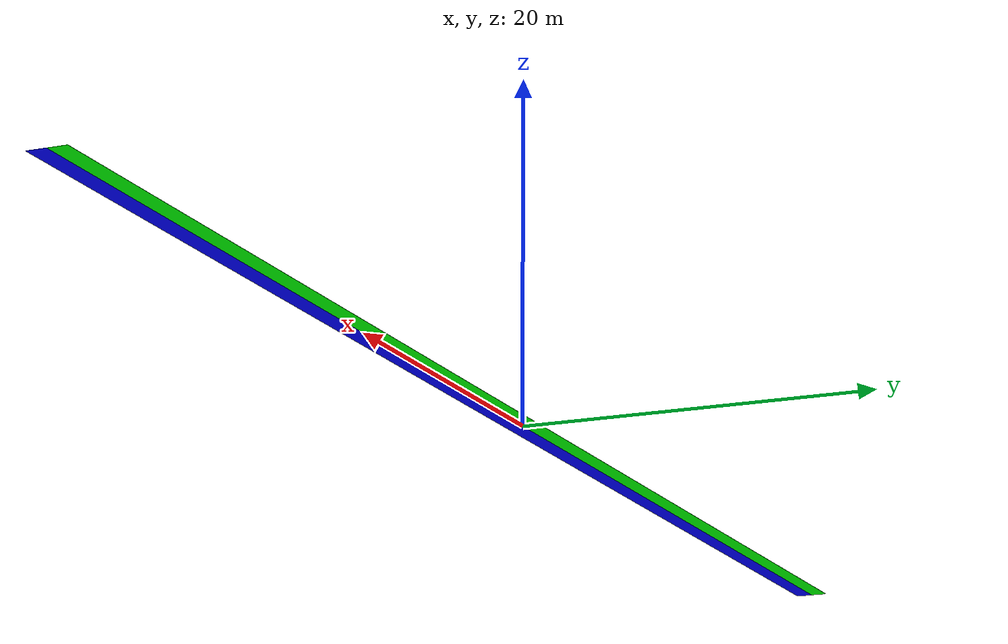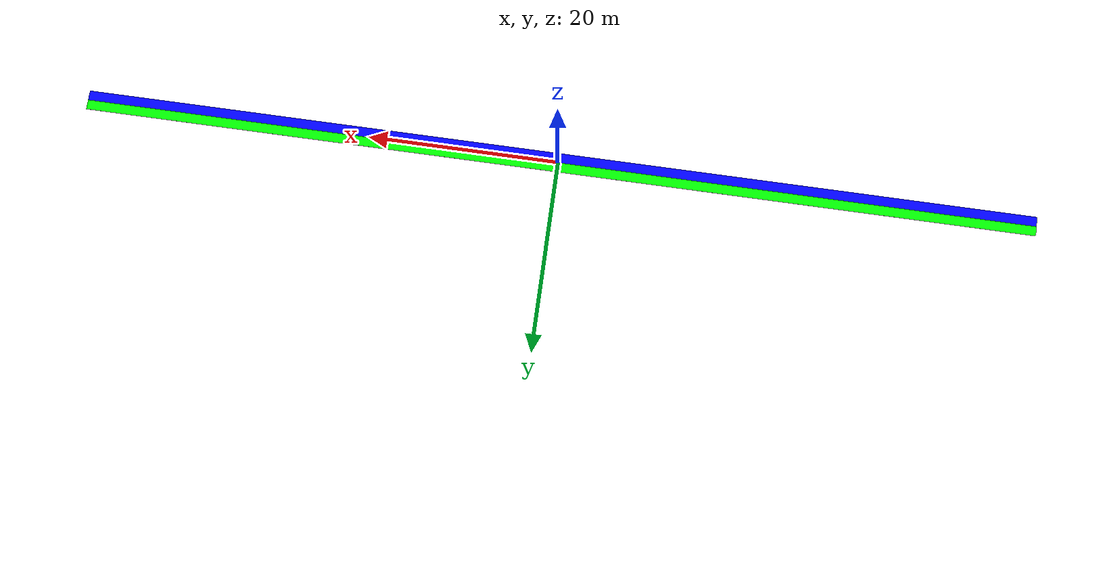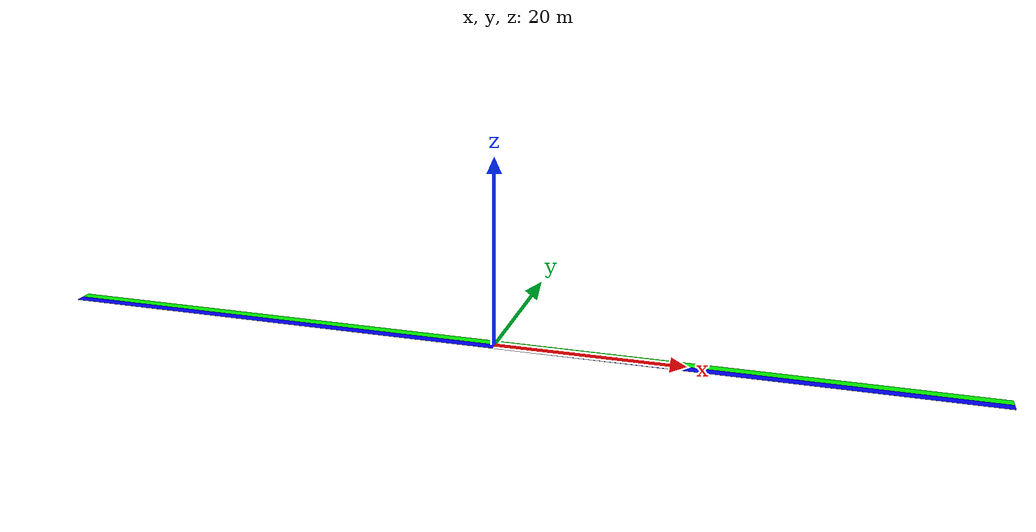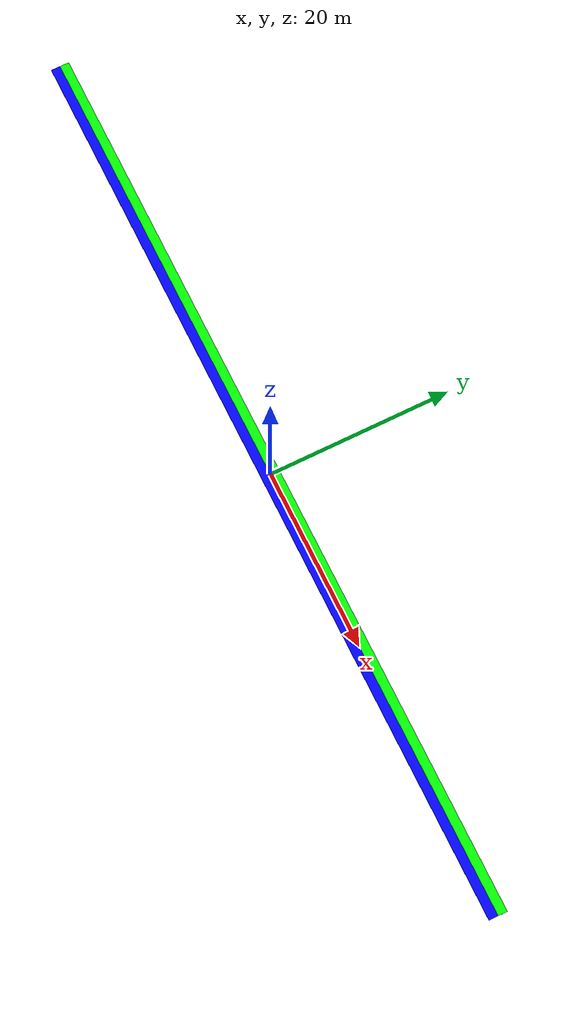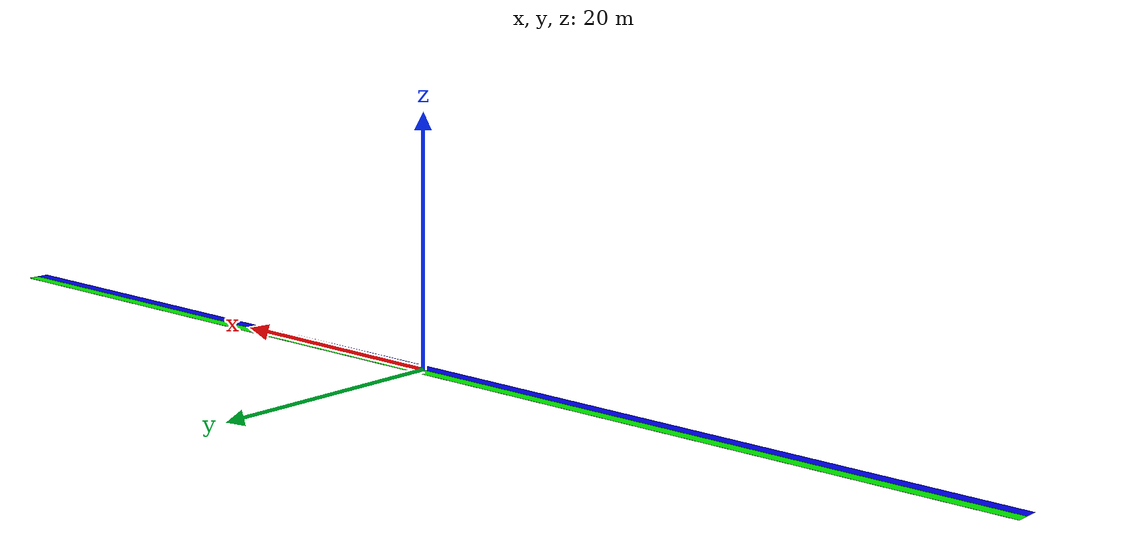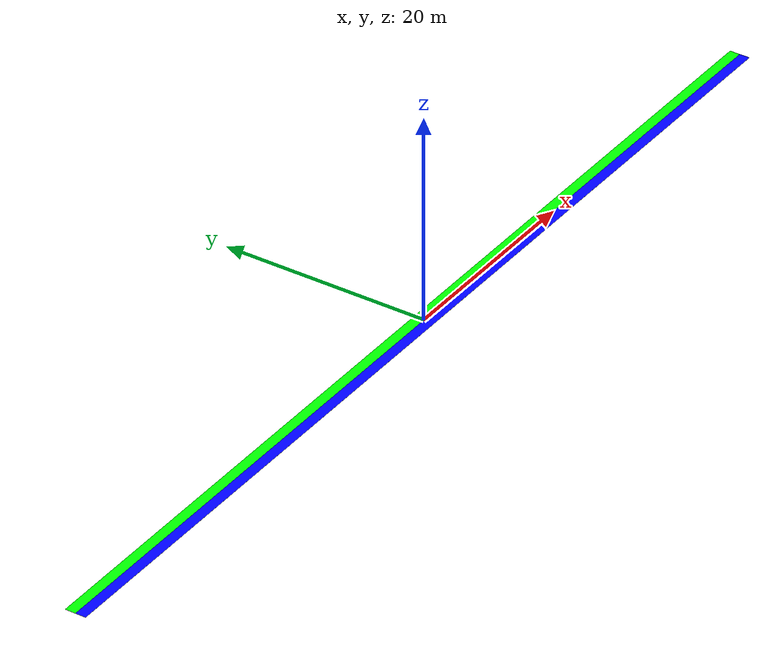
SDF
<?xml version="1.0" encoding="utf-8"?>
<sdf version="1.6">
    <model name="split_belt_treadmill">
        <static>false</static>

        <!-- Define the joint for moving -->
        <joint name="left_belt_joint" type="prismatic">
            <parent>world</parent>
            <child>left_belt_moving</child>
            <axis>
                <xyz>1 0 0</xyz>  <!-- along x -->
                <limit>
                    <lower>-1e16</lower>
                    <upper>1e16</upper>
                </limit>
                <dynamics>
                    <damping>0.1</damping>
                </dynamics>
            </axis>
        </joint>

        <joint name="right_belt_joint" type="prismatic">
            <parent>world</parent>
            <child>right_belt_moving</child>
            <axis>
                <xyz>1 0 0</xyz>
                <limit>
                    <lower>-1e16</lower>
                    <upper>1e16</upper>
                </limit>
                <dynamics>
                    <damping>0.1</damping>
                </dynamics>
            </axis>
        </joint>

        <!-- Define the actual moving belts -->
        <link name="left_belt_moving">
            <pose>0 0.5 0.005 0 0 0</pose>
            <inertial>
                <mass>10.0</mass>
                <inertia>
                    <ixx>1.0</ixx>
                    <iyy>1.0</iyy>
                    <izz>1.0</izz>
                </inertia>
            </inertial>
            <visual name="leftbelt_visual">
                <geometry>
                    <box><size>100 1 0.005</size></box>
                </geometry>
                <material>
                    <ambient>0.0 1.0 0.0 1.0</ambient>  <!-- green -->
                    <diffuse>0 1 0 1</diffuse>
                    <specular>0.1 0.1 0.1 1</specular>
                    <emissive>0 0 0 1</emissive>
                </material>
            </visual>
            <collision name="left_belt_moving_collision">
                <geometry>
                    <box><size>100 1 0.005</size></box>
                </geometry>
                <surface>
                    <friction>
                        <ode>
                            <mu>1.2</mu>
                            <mu2>1.2</mu2>
                        </ode>
                    </friction>
                </surface>
            </collision>
        </link>

        <link name="right_belt_moving">
            <pose>0 -0.5 0.005 0 0 0</pose>
            <inertial>
                <mass>1.0</mass>
                <inertia>
                    <ixx>1.0</ixx>
                    <iyy>1.0</iyy>
                    <izz>1.0</izz>
                </inertia>
            </inertial>
            <visual name="rightbelt_visual">
                <geometry>
                    <box><size>100 1 0.005</size></box>
                </geometry>
                <material>
                    <ambient>0.0 0.0 1.0 1.0</ambient>  <!-- blue -->
                    <diffuse>0 0 1 1</diffuse>
                    <specular>0.1 0.1 0.1 1</specular>
                    <emissive>0 0 0 1</emissive>
                </material>
            </visual>
            <collision name="right_belt_moving_collision">
                <geometry>
                    <box><size>100 1 0.005</size></box>
                </geometry>
                <surface>
                    <friction>
                        <ode>
                            <mu>1.2</mu>
                            <mu2>1.2</mu2>
                        </ode>
                    </friction>
                </surface>
            </collision>
        </link>

        <!-- Plugin for Conveyor Belt -->
        <plugin name="splitbelt_plugin" filename="libsplitbelt_plugin.so">
            <left_joint_name>left_belt_joint</left_joint_name>
            <right_joint_name>right_belt_joint</right_joint_name>
            <left_vel_init>0.0</left_vel_init>
            <right_vel_init>0.0</right_vel_init>
        </plugin>

    </model>
</sdf>
